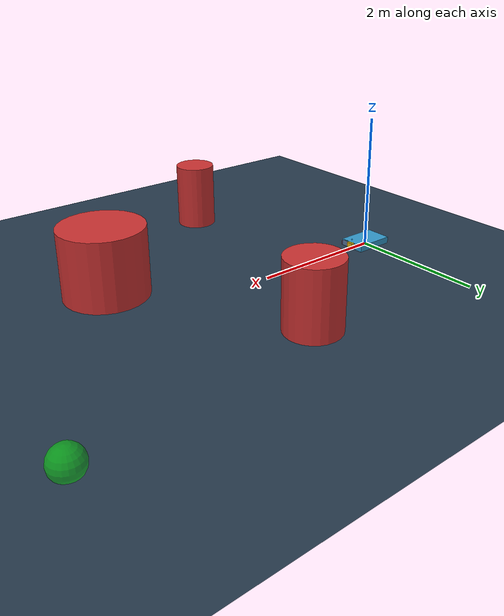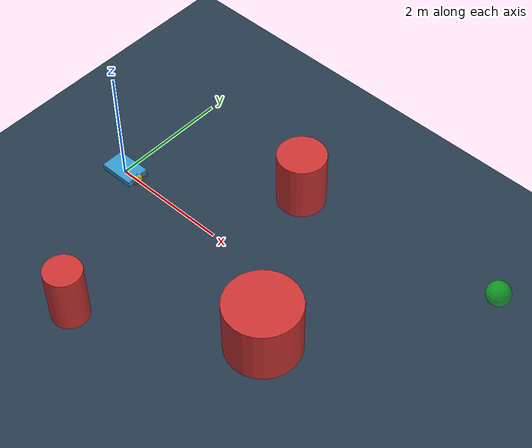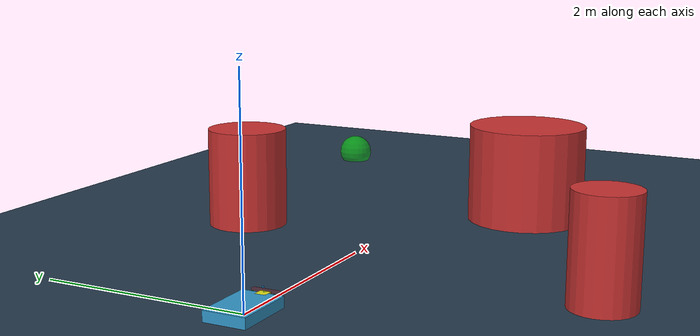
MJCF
<mujoco model="mobile_robot">
    <compiler angle="radian" coordinate="local" inertiafromgeom="true"/>
    <option timestep="0.02" gravity="0 0 -9.81"/>
    <visual>
        <global offwidth="160" offheight="120"/>
        <map znear="0.01" zfar="20"/>
    </visual>

    <asset>
        <texture type="skybox" builtin="gradient" rgb1="0.3 0.5 0.7" rgb2="0 0 0" width="512" height="512"/>
        <texture name="texplane" type="2d" builtin="checker" rgb1=".2 .3 .4" rgb2=".1 0.15 .2" width="512" height="512"/>
        <material name="matplane" texture="texplane" texrepeat="5 5" texuniform="true"/>
    </asset>

    <worldbody>
        <!-- 环境光 -->
        <light directional="true" diffuse=".8 .8 .8" pos="0 0 10" dir="0 0 -1"/>

        <!-- 地面 -->
        <geom name="ground" type="plane" size="10 10 0.1" material="matplane"/>

        <!-- 障碍物 -->
        <geom name="obs1" type="cylinder" pos="2.5 1.5 0.5" size="0.4 0.5" rgba="0.8 0.2 0.2 1"/>
        <geom name="obs2" type="cylinder" pos="4.0 -1.0 0.5" size="0.6 0.5" rgba="0.8 0.2 0.2 1"/>
        <geom name="obs3" type="cylinder" pos="1.5 -2.5 0.5" size="0.3 0.5" rgba="0.8 0.2 0.2 1"/>

        <!-- 目标点可视化 (虚化的球) -->
        <site name="target" pos="6.0 2.0 0.1" size="0.2" type="sphere" rgba="0 1 0 0.5"/>
        <site name="obs1_site" pos="2.5 1.5 0.5" size="0.02" type="sphere" rgba="1 0 0 0.2"/>
        <site name="obs2_site" pos="4.0 -1.0 0.5" size="0.02" type="sphere" rgba="1 0 0 0.2"/>
        <site name="obs3_site" pos="1.5 -2.5 0.5" size="0.02" type="sphere" rgba="1 0 0 0.2"/>

        <!-- 移动机器人抽象模型 (类似差速小车/气垫船) -->
        <body name="robot" pos="0 0 0.05">
            <!-- 限制在 2D 平面运动 (防止起飞翻车) -->
            <joint name="slide_x" type="slide" axis="1 0 0" damping="0.5"/>
            <joint name="slide_y" type="slide" axis="0 1 0" damping="0.5"/>
            <joint name="hinge_z" type="hinge" axis="0 0 1" damping="0.5"/>

            <geom name="chassis" type="box" size="0.3 0.2 0.05" rgba="0.2 0.6 0.8 1" mass="5.0"/>
            <!-- 标识车头方向 -->
            <geom name="front_indicator" type="box" pos="0.3 0 0" size="0.05 0.05 0.05" rgba="0.9 0.9 0.1 1"/>
            <!-- 控制受力点 -->
            <site name="robot_center" pos="0 0 0" size="0.01"/>
            <site name="imu_site" pos="0 0 0.03" size="0.01" type="sphere" rgba="1 1 0 0.3"/>
            <site name="front_bumper_site" pos="0.36 0 0.03" size="0.02 0.14 0.03" type="box" rgba="1 0 0 0.2"/>
            <site name="camera_ref_site" pos="0.30 0 0.10" size="0.01" type="sphere" rgba="0 0.6 1 0.4"/>
            <site name="lidar_left_front_site" pos="0.30 0.10 0.05" size="0.008" type="sphere" zaxis="0.866 0.5 0" rgba="0 1 0 0.3"/>
            <site name="lidar_front_site" pos="0.32 0 0.05" size="0.008" type="sphere" zaxis="1 0 0" rgba="0 1 0 0.3"/>
            <site name="lidar_right_front_site" pos="0.30 -0.10 0.05" size="0.008" type="sphere" zaxis="0.866 -0.5 0" rgba="0 1 0 0.3"/>
            <camera name="front_depth_cam" pos="0.30 0 0.10" euler="0 0 0" fovy="70"/>
        </body>
    </worldbody>

    <actuator>
        <!-- 差速小车抽象：前进推力与转向力矩 -->
        <!-- gear的六个分量分别对应局部坐标系的 x, y, z平移和 x, y, z旋转 -->
        <motor name="forward_force" site="robot_center" gear="100 0 0 0 0 0" ctrlrange="-10 10" ctrllimited="true"/>
        <motor name="turning_torque" site="robot_center" gear="0 0 0 0 0 20" ctrlrange="-5 5" ctrllimited="true"/>
    </actuator>

    <sensor>
        <!-- 原始标量传感器流 -->
        <jointpos name="joint_x_pos" joint="slide_x"/>
        <jointpos name="joint_y_pos" joint="slide_y"/>
        <jointpos name="joint_yaw_pos" joint="hinge_z"/>
        <jointvel name="joint_x_vel" joint="slide_x"/>
        <jointvel name="joint_y_vel" joint="slide_y"/>
        <jointvel name="joint_yaw_vel" joint="hinge_z"/>
        <accelerometer name="imu_acc" site="imu_site"/>
        <gyro name="imu_gyro" site="imu_site"/>
        <touch name="touch_front_force" site="front_bumper_site"/>
        <rangefinder name="lidar_left_front" site="lidar_left_front_site" cutoff="8.0"/>
        <rangefinder name="lidar_front" site="lidar_front_site" cutoff="8.0"/>
        <rangefinder name="lidar_right_front" site="lidar_right_front_site" cutoff="8.0"/>

        <!-- 监督真值（上帝视角） -->
        <framepos name="base_pos_gt" objtype="body" objname="robot"/>
        <framequat name="base_quat_gt" objtype="body" objname="robot"/>
        <framelinvel name="base_linvel_gt" objtype="body" objname="robot"/>
        <frameangvel name="base_angvel_gt" objtype="body" objname="robot"/>
        <framepos name="camera_pos_gt" objtype="site" objname="camera_ref_site"/>
        <framequat name="camera_quat_gt" objtype="site" objname="camera_ref_site"/>
        <framepos name="target_pos_gt" objtype="site" objname="target"/>
        <framepos name="obs1_pos_gt" objtype="site" objname="obs1_site"/>
        <framepos name="obs2_pos_gt" objtype="site" objname="obs2_site"/>
        <framepos name="obs3_pos_gt" objtype="site" objname="obs3_site"/>
    </sensor>
</mujoco>
